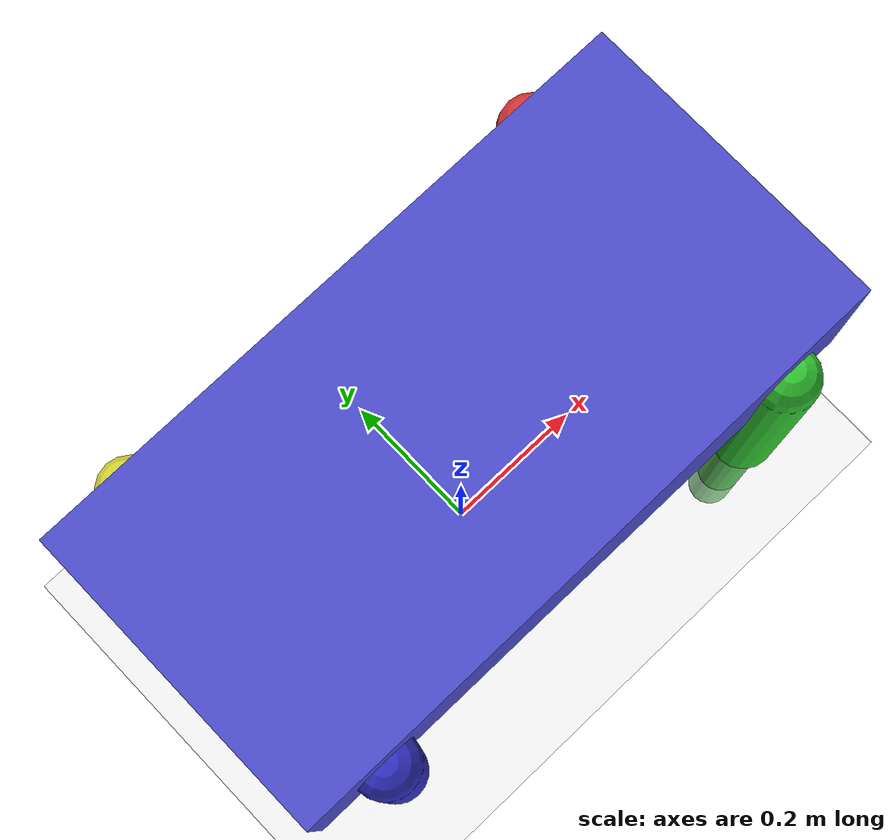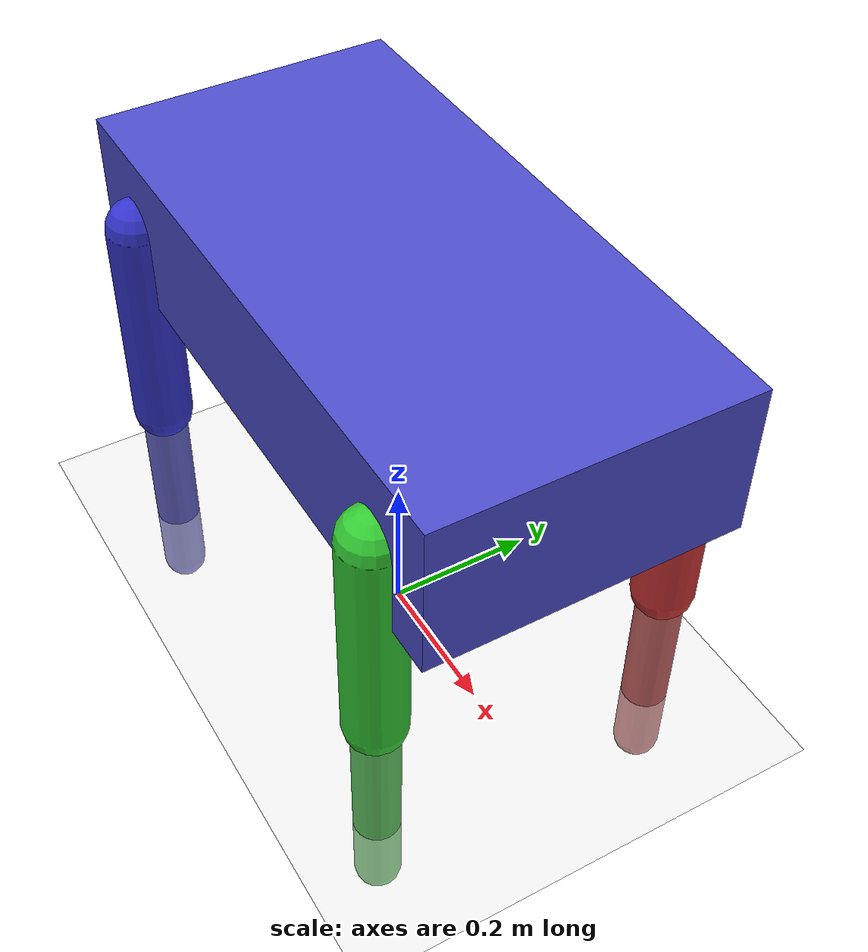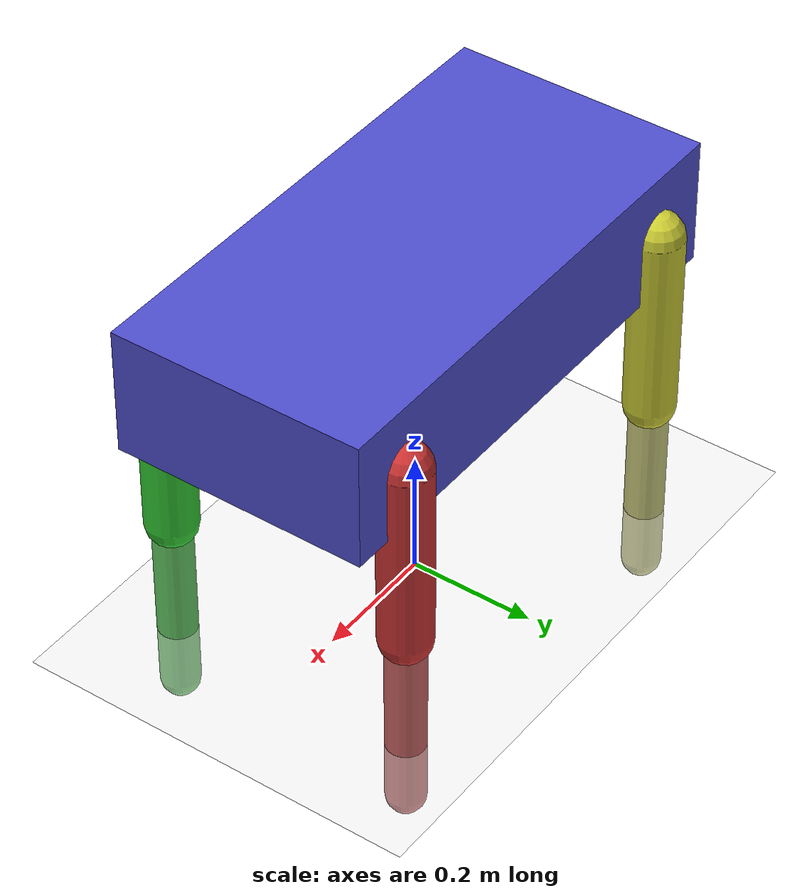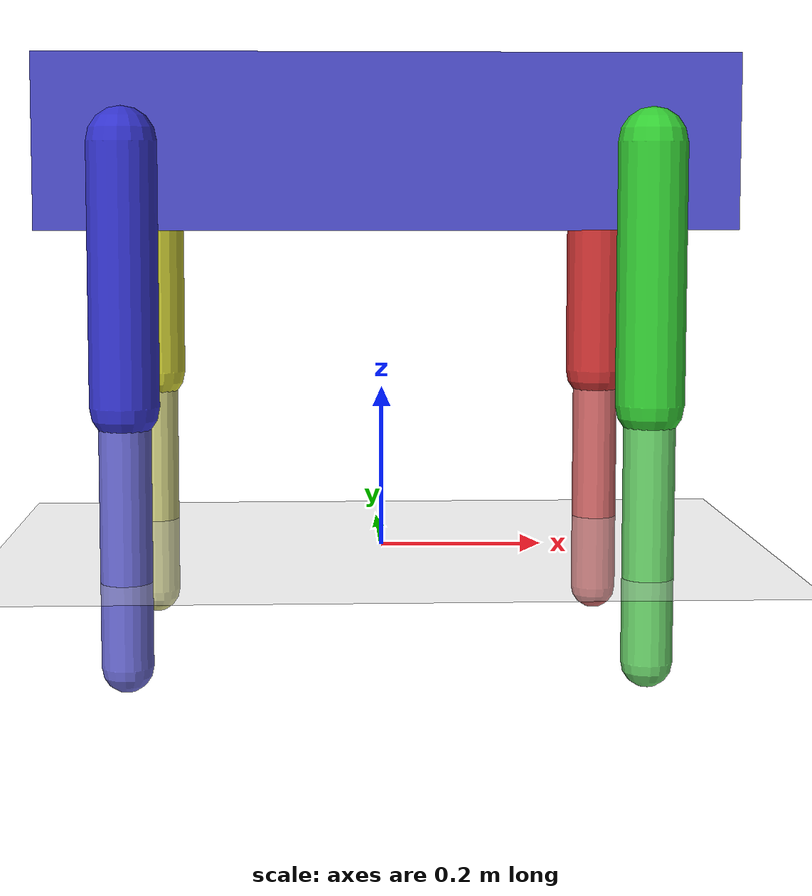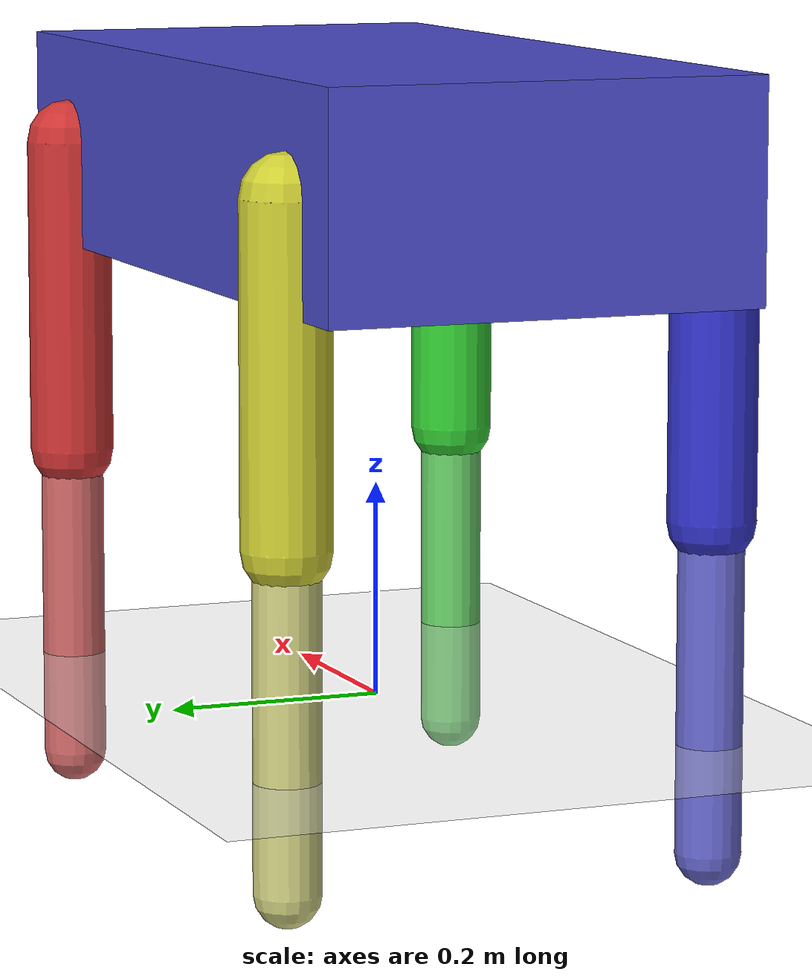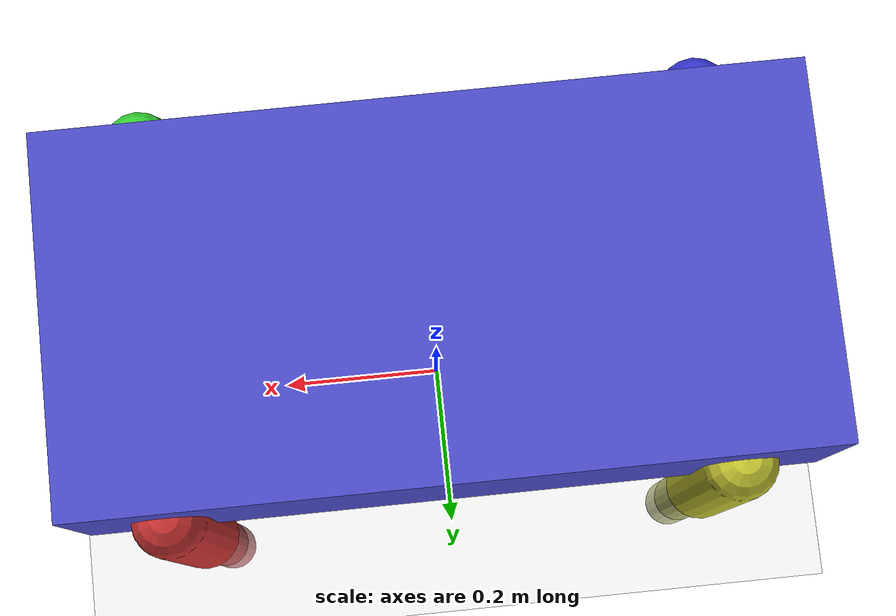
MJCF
<mujoco model="quadruped">
  <compiler angle="degree"/>
  <option gravity="0 0 -9.81" timestep="0.002"/>
  <visual>
    <global offwidth="1920" offheight="1080"/>
  </visual>

  <worldbody>
    <light pos="0 0 3" dir="0 0 -1"/>
    <geom type="plane" size="10 10 0.1" rgba="0.9 0.9 0.9 1"/>

    <body name="torso" pos="0 0 0.5">
      <freejoint name="root"/>
      <geom type="box" size="0.4 0.2 0.1" mass="5" rgba="0.3 0.3 0.8 1"/>

      <!-- Front-left leg -->
      <body name="fl_upper" pos="0.3 0.2 0">
        <joint name="fl_hip" type="hinge" axis="0 1 0" range="-60 60"/>
        <geom type="capsule" fromto="0 0 0 0 0 -0.3" size="0.04" mass="0.5"
              rgba="0.8 0.2 0.2 1"/>
        <body name="fl_lower" pos="0 0 -0.3">
          <joint name="fl_knee" type="hinge" axis="0 1 0" range="-90 0"/>
          <geom type="capsule" fromto="0 0 0 0 0 -0.3" size="0.03" mass="0.3"
                rgba="0.8 0.4 0.4 1"/>
        </body>
      </body>

      <!-- Front-right leg -->
      <body name="fr_upper" pos="0.3 -0.2 0">
        <joint name="fr_hip" type="hinge" axis="0 1 0" range="-60 60"/>
        <geom type="capsule" fromto="0 0 0 0 0 -0.3" size="0.04" mass="0.5"
              rgba="0.2 0.8 0.2 1"/>
        <body name="fr_lower" pos="0 0 -0.3">
          <joint name="fr_knee" type="hinge" axis="0 1 0" range="-90 0"/>
          <geom type="capsule" fromto="0 0 0 0 0 -0.3" size="0.03" mass="0.3"
                rgba="0.4 0.8 0.4 1"/>
        </body>
      </body>

      <!-- Back-left leg -->
      <body name="bl_upper" pos="-0.3 0.2 0">
        <joint name="bl_hip" type="hinge" axis="0 1 0" range="-60 60"/>
        <geom type="capsule" fromto="0 0 0 0 0 -0.3" size="0.04" mass="0.5"
              rgba="0.8 0.8 0.2 1"/>
        <body name="bl_lower" pos="0 0 -0.3">
          <joint name="bl_knee" type="hinge" axis="0 1 0" range="-90 0"/>
          <geom type="capsule" fromto="0 0 0 0 0 -0.3" size="0.03" mass="0.3"
                rgba="0.8 0.8 0.5 1"/>
        </body>
      </body>

      <!-- Back-right leg -->
      <body name="br_upper" pos="-0.3 -0.2 0">
        <joint name="br_hip" type="hinge" axis="0 1 0" range="-60 60"/>
        <geom type="capsule" fromto="0 0 0 0 0 -0.3" size="0.04" mass="0.5"
              rgba="0.2 0.2 0.8 1"/>
        <body name="br_lower" pos="0 0 -0.3">
          <joint name="br_knee" type="hinge" axis="0 1 0" range="-90 0"/>
          <geom type="capsule" fromto="0 0 0 0 0 -0.3" size="0.03" mass="0.3"
                rgba="0.4 0.4 0.8 1"/>
        </body>
      </body>
    </body>
  </worldbody>

  <actuator>
    <motor name="fl_hip_motor" joint="fl_hip" gear="100"/>
    <motor name="fl_knee_motor" joint="fl_knee" gear="50"/>
    <motor name="fr_hip_motor" joint="fr_hip" gear="100"/>
    <motor name="fr_knee_motor" joint="fr_knee" gear="50"/>
    <motor name="bl_hip_motor" joint="bl_hip" gear="100"/>
    <motor name="bl_knee_motor" joint="bl_knee" gear="50"/>
    <motor name="br_hip_motor" joint="br_hip" gear="100"/>
    <motor name="br_knee_motor" joint="br_knee" gear="50"/>
  </actuator>

  <sensor>
    <jointpos joint="fl_hip"/><jointpos joint="fl_knee"/>
    <jointpos joint="fr_hip"/><jointpos joint="fr_knee"/>
    <jointpos joint="bl_hip"/><jointpos joint="bl_knee"/>
    <jointpos joint="br_hip"/><jointpos joint="br_knee"/>
    <framepos objtype="body" objname="torso"/>
  </sensor>
</mujoco>
